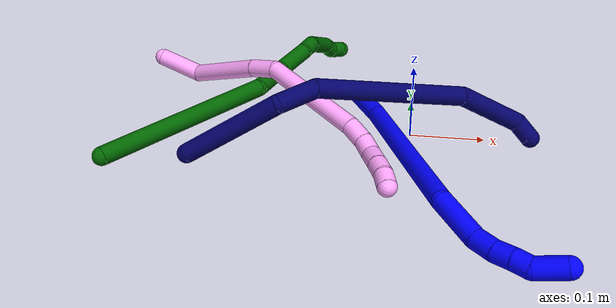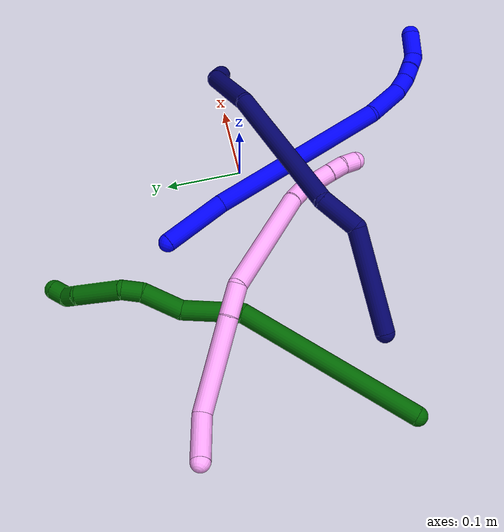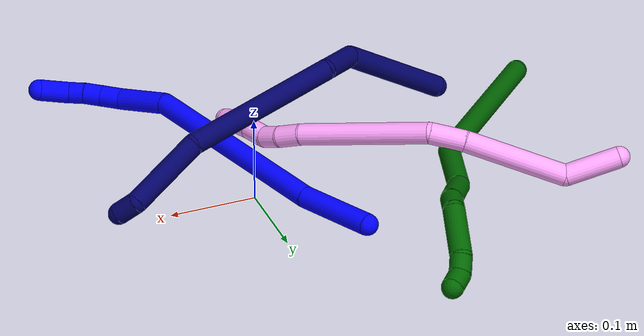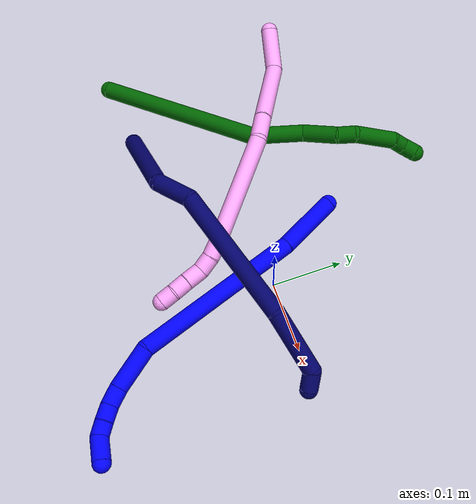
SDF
<sdf version="1.7">
 <world name="default">
  <model name="1">
   <static>0</static>
   <link name="1">
    <collision name="collision-cylinder-e_1_1_4">
     <pose>0.017603 -0.017178 0.037435 0.430205 0.403896 0.089404</pose>
     <geometry><cylinder><radius>0.0125</radius><length>0.089584</length></cylinder></geometry>
     <surface>
      <friction><ode><mu>1.16</mu><mu2>1.16</mu2><slip1>0</slip1><slip2>0</slip2></ode></friction>
      <contact><ode><kp>1e+06</kp><kd>1</kd><max_vel>0</max_vel><min_depth>0.001</min_depth></ode></contact>
     </surface>
    </collision>
    <visual name="visual-cylinder-e_1_1_4">
     <pose>0.017603 -0.017178 0.037435 0.430205 0.403896 0.089404</pose>
     <geometry><cylinder><radius>0.0125</radius><length>0.089584</length></cylinder></geometry>
     <material><ambient>0 0 1 1</ambient></material>
    </visual>
    <collision name="collision-cylinder-e_2_4_5">
     <pose>0.074973 -0.096499 0.172942 0.564796 0.329988 0.09655</pose>
     <geometry><cylinder><radius>0.0125</radius><length>0.245449</length></cylinder></geometry>
     <surface>
      <friction><ode><mu>1.16</mu><mu2>1.16</mu2><slip1>0</slip1><slip2>0</slip2></ode></friction>
      <contact><ode><kp>1e+06</kp><kd>1</kd><max_vel>0</max_vel><min_depth>0.001</min_depth></ode></contact>
     </surface>
    </collision>
    <visual name="visual-cylinder-e_2_4_5">
     <pose>0.074973 -0.096499 0.172942 0.564796 0.329988 0.09655</pose>
     <geometry><cylinder><radius>0.0125</radius><length>0.245449</length></cylinder></geometry>
     <material><ambient>0 0 1 1</ambient></material>
    </visual>
    <collision name="collision-cylinder-e_3_5_6">
     <pose>0.132431 -0.165372 0.295425 0.268982 0.609805 0.085116</pose>
     <geometry><cylinder><radius>0.0125</radius><length>0.06178</length></cylinder></geometry>
     <surface>
      <friction><ode><mu>1.16</mu><mu2>1.16</mu2><slip1>0</slip1><slip2>0</slip2></ode></friction>
      <contact><ode><kp>1e+06</kp><kd>1</kd><max_vel>0</max_vel><min_depth>0.001</min_depth></ode></contact>
     </surface>
    </collision>
    <visual name="visual-cylinder-e_3_5_6">
     <pose>0.132431 -0.165372 0.295425 0.268982 0.609805 0.085116</pose>
     <geometry><cylinder><radius>0.0125</radius><length>0.06178</length></cylinder></geometry>
     <material><ambient>0 0 1 1</ambient></material>
    </visual>
    <collision name="collision-cylinder-e_4_6_7">
     <pose>0.15564 -0.172902 0.331485 0.068675 0.441516 0.015418</pose>
     <geometry><cylinder><radius>0.0125</radius><length>0.025827</length></cylinder></geometry>
     <surface>
      <friction><ode><mu>1.16</mu><mu2>1.16</mu2><slip1>0</slip1><slip2>0</slip2></ode></friction>
      <contact><ode><kp>1e+06</kp><kd>1</kd><max_vel>0</max_vel><min_depth>0.001</min_depth></ode></contact>
     </surface>
    </collision>
    <visual name="visual-cylinder-e_4_6_7">
     <pose>0.15564 -0.172902 0.331485 0.068675 0.441516 0.015418</pose>
     <geometry><cylinder><radius>0.0125</radius><length>0.025827</length></cylinder></geometry>
     <material><ambient>0 0 1 1</ambient></material>
    </visual>
    <collision name="collision-cylinder-e_5_7_8">
     <pose>0.164638 -0.172757 0.35322 -0.093541 0.330804 -0.015626</pose>
     <geometry><cylinder><radius>0.0125</radius><length>0.021425</length></cylinder></geometry>
     <surface>
      <friction><ode><mu>1.16</mu><mu2>1.16</mu2><slip1>0</slip1><slip2>0</slip2></ode></friction>
      <contact><ode><kp>1e+06</kp><kd>1</kd><max_vel>0</max_vel><min_depth>0.001</min_depth></ode></contact>
     </surface>
    </collision>
    <visual name="visual-cylinder-e_5_7_8">
     <pose>0.164638 -0.172757 0.35322 -0.093541 0.330804 -0.015626</pose>
     <geometry><cylinder><radius>0.0125</radius><length>0.021425</length></cylinder></geometry>
     <material><ambient>0 0 1 1</ambient></material>
    </visual>
    <collision name="collision-cylinder-e_6_8_9">
     <pose>0.172284 -0.170591 0.372341 -0.134196 0.428783 -0.029261</pose>
     <geometry><cylinder><radius>0.0125</radius><length>0.020046</length></cylinder></geometry>
     <surface>
      <friction><ode><mu>1.16</mu><mu2>1.16</mu2><slip1>0</slip1><slip2>0</slip2></ode></friction>
      <contact><ode><kp>1e+06</kp><kd>1</kd><max_vel>0</max_vel><min_depth>0.001</min_depth></ode></contact>
     </surface>
    </collision>
    <visual name="visual-cylinder-e_6_8_9">
     <pose>0.172284 -0.170591 0.372341 -0.134196 0.428783 -0.029261</pose>
     <geometry><cylinder><radius>0.0125</radius><length>0.020046</length></cylinder></geometry>
     <material><ambient>0 0 1 1</ambient></material>
    </visual>
    <collision name="collision-cylinder-e_7_9_2">
     <pose>0.177261 -0.160811 0.397125 -0.497868 0.045145 -0.011478</pose>
     <geometry><cylinder><radius>0.0125</radius><length>0.035888</length></cylinder></geometry>
     <surface>
      <friction><ode><mu>1.16</mu><mu2>1.16</mu2><slip1>0</slip1><slip2>0</slip2></ode></friction>
      <contact><ode><kp>1e+06</kp><kd>1</kd><max_vel>0</max_vel><min_depth>0.001</min_depth></ode></contact>
     </surface>
    </collision>
    <visual name="visual-cylinder-e_7_9_2">
     <pose>0.177261 -0.160811 0.397125 -0.497868 0.045145 -0.011478</pose>
     <geometry><cylinder><radius>0.0125</radius><length>0.035888</length></cylinder></geometry>
     <material><ambient>0 0 1 1</ambient></material>
    </visual>
    <collision name="collision-sphere-2">
     <pose>0.178071 -0.15225 0.412875 0 -0 0</pose>
     <geometry><sphere><radius>0.0125</radius></sphere></geometry>
     <surface>
      <friction><ode><mu>1.16</mu><mu2>1.16</mu2><slip1>0</slip1><slip2>0</slip2></ode></friction>
      <contact><ode><kp>1e+06</kp><kd>1</kd><max_vel>0</max_vel><min_depth>0.001</min_depth></ode></contact>
     </surface>
    </collision>
    <visual name="visual-sphere-2">
     <pose>0.178071 -0.15225 0.412875 0 -0 0</pose>
     <geometry><sphere><radius>0.0125</radius></sphere></geometry>
     <material><ambient>0 0 1 1</ambient></material>
    </visual>
    <collision name="collision-sphere-9">
     <pose>0.176452 -0.169371 0.381375 0 -0 0</pose>
     <geometry><sphere><radius>0.0125</radius></sphere></geometry>
     <surface>
      <friction><ode><mu>1.16</mu><mu2>1.16</mu2><slip1>0</slip1><slip2>0</slip2></ode></friction>
      <contact><ode><kp>1e+06</kp><kd>1</kd><max_vel>0</max_vel><min_depth>0.001</min_depth></ode></contact>
     </surface>
    </collision>
    <visual name="visual-sphere-9">
     <pose>0.176452 -0.169371 0.381375 0 -0 0</pose>
     <geometry><sphere><radius>0.0125</radius></sphere></geometry>
     <material><ambient>0 0 1 1</ambient></material>
    </visual>
    <collision name="collision-sphere-4">
     <pose>0.035207 -0.034355 0.07487 0 -0 0</pose>
     <geometry><sphere><radius>0.0125</radius></sphere></geometry>
     <surface>
      <friction><ode><mu>1.16</mu><mu2>1.16</mu2><slip1>0</slip1><slip2>0</slip2></ode></friction>
      <contact><ode><kp>1e+06</kp><kd>1</kd><max_vel>0</max_vel><min_depth>0.001</min_depth></ode></contact>
     </surface>
    </collision>
    <visual name="visual-sphere-4">
     <pose>0.035207 -0.034355 0.07487 0 -0 0</pose>
     <geometry><sphere><radius>0.0125</radius></sphere></geometry>
     <material><ambient>0 0 1 1</ambient></material>
    </visual>
    <collision name="collision-sphere-1">
     <geometry><sphere><radius>0.0125</radius></sphere></geometry>
     <surface>
      <friction><ode><mu>1.16</mu><mu2>1.16</mu2><slip1>0</slip1><slip2>0</slip2></ode></friction>
      <contact><ode><kp>1e+06</kp><kd>1</kd><max_vel>0</max_vel><min_depth>0.001</min_depth></ode></contact>
     </surface>
    </collision>
    <visual name="visual-sphere-1">
     <geometry><sphere><radius>0.0125</radius></sphere></geometry>
     <material><ambient>0 0 1 1</ambient></material>
    </visual>
    <collision name="collision-sphere-8">
     <pose>0.168117 -0.171811 0.363308 0 -0 0</pose>
     <geometry><sphere><radius>0.0125</radius></sphere></geometry>
     <surface>
      <friction><ode><mu>1.16</mu><mu2>1.16</mu2><slip1>0</slip1><slip2>0</slip2></ode></friction>
      <contact><ode><kp>1e+06</kp><kd>1</kd><max_vel>0</max_vel><min_depth>0.001</min_depth></ode></contact>
     </surface>
    </collision>
    <visual name="visual-sphere-8">
     <pose>0.168117 -0.171811 0.363308 0 -0 0</pose>
     <geometry><sphere><radius>0.0125</radius></sphere></geometry>
     <material><ambient>0 0 1 1</ambient></material>
    </visual>
    <collision name="collision-sphere-5">
     <pose>0.11474 -0.158642 0.271014 0 -0 0</pose>
     <geometry><sphere><radius>0.0125</radius></sphere></geometry>
     <surface>
      <friction><ode><mu>1.16</mu><mu2>1.16</mu2><slip1>0</slip1><slip2>0</slip2></ode></friction>
      <contact><ode><kp>1e+06</kp><kd>1</kd><max_vel>0</max_vel><min_depth>0.001</min_depth></ode></contact>
     </surface>
    </collision>
    <visual name="visual-sphere-5">
     <pose>0.11474 -0.158642 0.271014 0 -0 0</pose>
     <geometry><sphere><radius>0.0125</radius></sphere></geometry>
     <material><ambient>0 0 1 1</ambient></material>
    </visual>
    <collision name="collision-sphere-6">
     <pose>0.150122 -0.172101 0.319837 0 -0 0</pose>
     <geometry><sphere><radius>0.0125</radius></sphere></geometry>
     <surface>
      <friction><ode><mu>1.16</mu><mu2>1.16</mu2><slip1>0</slip1><slip2>0</slip2></ode></friction>
      <contact><ode><kp>1e+06</kp><kd>1</kd><max_vel>0</max_vel><min_depth>0.001</min_depth></ode></contact>
     </surface>
    </collision>
    <visual name="visual-sphere-6">
     <pose>0.150122 -0.172101 0.319837 0 -0 0</pose>
     <geometry><sphere><radius>0.0125</radius></sphere></geometry>
     <material><ambient>0 0 1 1</ambient></material>
    </visual>
    <collision name="collision-sphere-7">
     <pose>0.161158 -0.173703 0.343132 0 -0 0</pose>
     <geometry><sphere><radius>0.0125</radius></sphere></geometry>
     <surface>
      <friction><ode><mu>1.16</mu><mu2>1.16</mu2><slip1>0</slip1><slip2>0</slip2></ode></friction>
      <contact><ode><kp>1e+06</kp><kd>1</kd><max_vel>0</max_vel><min_depth>0.001</min_depth></ode></contact>
     </surface>
    </collision>
    <visual name="visual-sphere-7">
     <pose>0.161158 -0.173703 0.343132 0 -0 0</pose>
     <geometry><sphere><radius>0.0125</radius></sphere></geometry>
     <material><ambient>0 0 1 1</ambient></material>
    </visual>
    <inertial>
     <pose>0.091046 -0.105598 0.203797 0 -0 0</pose>
     <mass>0.5</mass>
     <inertia>
      <ixx>0.00139</ixx>
      <ixy>0</ixy>
      <ixz>0</ixz>
      <iyy>0.001263</iyy>
      <iyz>0</iyz>
      <izz>0.000245</izz>
     </inertia>
    </inertial>
   </link>
   <pose>-0.08847 0.115918 0.011793 -0.30538 1.16746 -0.975531</pose>
  </model>
  <model name="4">
   <static>0</static>
   <link name="4">
    <collision name="collision-cylinder-e_1_1_4">
     <pose>-0.007444 0.000998 -0.031047 -3.10945 -0.235205 2.87119</pose>
     <geometry><cylinder><radius>0.0125</radius><length>0.063884</length></cylinder></geometry>
     <surface>
      <friction><ode><mu>1.16</mu><mu2>1.16</mu2><slip1>0</slip1><slip2>0</slip2></ode></friction>
      <contact><ode><kp>1e+06</kp><kd>1</kd><max_vel>0</max_vel><min_depth>0.001</min_depth></ode></contact>
     </surface>
    </collision>
    <visual name="visual-cylinder-e_1_1_4">
     <pose>-0.007444 0.000998 -0.031047 -3.10945 -0.235205 2.87119</pose>
     <geometry><cylinder><radius>0.0125</radius><length>0.063884</length></cylinder></geometry>
     <material><ambient>1 0.65098 0.996078 1</ambient></material>
    </visual>
    <collision name="collision-cylinder-e_2_4_5">
     <pose>-0.004634 0.033188 -0.1121 -2.58389 0.172257 -0.585794</pose>
     <geometry><cylinder><radius>0.0125</radius><length>0.119646</length></cylinder></geometry>
     <surface>
      <friction><ode><mu>1.16</mu><mu2>1.16</mu2><slip1>0</slip1><slip2>0</slip2></ode></friction>
      <contact><ode><kp>1e+06</kp><kd>1</kd><max_vel>0</max_vel><min_depth>0.001</min_depth></ode></contact>
     </surface>
    </collision>
    <visual name="visual-cylinder-e_2_4_5">
     <pose>-0.004634 0.033188 -0.1121 -2.58389 0.172257 -0.585794</pose>
     <geometry><cylinder><radius>0.0125</radius><length>0.119646</length></cylinder></geometry>
     <material><ambient>1 0.65098 0.996078 1</ambient></material>
    </visual>
    <collision name="collision-cylinder-e_3_5_6">
     <pose>0.008488 0.07293 -0.180318 -2.70263 0.141612 -0.615669</pose>
     <geometry><cylinder><radius>0.0125</radius><length>0.040643</length></cylinder></geometry>
     <surface>
      <friction><ode><mu>1.16</mu><mu2>1.16</mu2><slip1>0</slip1><slip2>0</slip2></ode></friction>
      <contact><ode><kp>1e+06</kp><kd>1</kd><max_vel>0</max_vel><min_depth>0.001</min_depth></ode></contact>
     </surface>
    </collision>
    <visual name="visual-cylinder-e_3_5_6">
     <pose>0.008488 0.07293 -0.180318 -2.70263 0.141612 -0.615669</pose>
     <geometry><cylinder><radius>0.0125</radius><length>0.040643</length></cylinder></geometry>
     <material><ambient>1 0.65098 0.996078 1</ambient></material>
    </visual>
    <collision name="collision-cylinder-e_4_6_7">
     <pose>0.029701 0.081415 -0.273951 3.14073 0.238591 3.13437</pose>
     <geometry><cylinder><radius>0.0125</radius><length>0.155241</length></cylinder></geometry>
     <surface>
      <friction><ode><mu>1.16</mu><mu2>1.16</mu2><slip1>0</slip1><slip2>0</slip2></ode></friction>
      <contact><ode><kp>1e+06</kp><kd>1</kd><max_vel>0</max_vel><min_depth>0.001</min_depth></ode></contact>
     </surface>
    </collision>
    <visual name="visual-cylinder-e_4_6_7">
     <pose>0.029701 0.081415 -0.273951 3.14073 0.238591 3.13437</pose>
     <geometry><cylinder><radius>0.0125</radius><length>0.155241</length></cylinder></geometry>
     <material><ambient>1 0.65098 0.996078 1</ambient></material>
    </visual>
    <collision name="collision-cylinder-e_5_7_8">
     <pose>0.051938 0.078909 -0.362791 2.96164 0.278026 1.99617</pose>
     <geometry><cylinder><radius>0.0125</radius><length>0.028367</length></cylinder></geometry>
     <surface>
      <friction><ode><mu>1.16</mu><mu2>1.16</mu2><slip1>0</slip1><slip2>0</slip2></ode></friction>
      <contact><ode><kp>1e+06</kp><kd>1</kd><max_vel>0</max_vel><min_depth>0.001</min_depth></ode></contact>
     </surface>
    </collision>
    <visual name="visual-cylinder-e_5_7_8">
     <pose>0.051938 0.078909 -0.362791 2.96164 0.278026 1.99617</pose>
     <geometry><cylinder><radius>0.0125</radius><length>0.028367</length></cylinder></geometry>
     <material><ambient>1 0.65098 0.996078 1</ambient></material>
    </visual>
    <collision name="collision-cylinder-e_6_8_9">
     <pose>0.061077 0.073676 -0.386274 2.87098 0.465499 2.09897</pose>
     <geometry><cylinder><radius>0.0125</radius><length>0.023376</length></cylinder></geometry>
     <surface>
      <friction><ode><mu>1.16</mu><mu2>1.16</mu2><slip1>0</slip1><slip2>0</slip2></ode></friction>
      <contact><ode><kp>1e+06</kp><kd>1</kd><max_vel>0</max_vel><min_depth>0.001</min_depth></ode></contact>
     </surface>
    </collision>
    <visual name="visual-cylinder-e_6_8_9">
     <pose>0.061077 0.073676 -0.386274 2.87098 0.465499 2.09897</pose>
     <geometry><cylinder><radius>0.0125</radius><length>0.023376</length></cylinder></geometry>
     <material><ambient>1 0.65098 0.996078 1</ambient></material>
    </visual>
    <collision name="collision-cylinder-e_7_9_10">
     <pose>0.07529 0.071174 -0.405593 -3.11026 0.769293 -3.06423</pose>
     <geometry><cylinder><radius>0.0125</radius><length>0.025778</length></cylinder></geometry>
     <surface>
      <friction><ode><mu>1.16</mu><mu2>1.16</mu2><slip1>0</slip1><slip2>0</slip2></ode></friction>
      <contact><ode><kp>1e+06</kp><kd>1</kd><max_vel>0</max_vel><min_depth>0.001</min_depth></ode></contact>
     </surface>
    </collision>
    <visual name="visual-cylinder-e_7_9_10">
     <pose>0.07529 0.071174 -0.405593 -3.11026 0.769293 -3.06423</pose>
     <geometry><cylinder><radius>0.0125</radius><length>0.025778</length></cylinder></geometry>
     <material><ambient>1 0.65098 0.996078 1</ambient></material>
    </visual>
    <collision name="collision-cylinder-e_8_10_11">
     <pose>0.091697 0.071079 -0.423105 3.09498 0.732957 3.02027</pose>
     <geometry><cylinder><radius>0.0125</radius><length>0.022245</length></cylinder></geometry>
     <surface>
      <friction><ode><mu>1.16</mu><mu2>1.16</mu2><slip1>0</slip1><slip2>0</slip2></ode></friction>
      <contact><ode><kp>1e+06</kp><kd>1</kd><max_vel>0</max_vel><min_depth>0.001</min_depth></ode></contact>
     </surface>
    </collision>
    <visual name="visual-cylinder-e_8_10_11">
     <pose>0.091697 0.071079 -0.423105 3.09498 0.732957 3.02027</pose>
     <geometry><cylinder><radius>0.0125</radius><length>0.022245</length></cylinder></geometry>
     <material><ambient>1 0.65098 0.996078 1</ambient></material>
    </visual>
    <collision name="collision-cylinder-e_9_11_2">
     <pose>0.106086 0.06811 -0.438672 2.80189 0.730662 2.2986</pose>
     <geometry><cylinder><radius>0.0125</radius><length>0.02082</length></cylinder></geometry>
     <surface>
      <friction><ode><mu>1.16</mu><mu2>1.16</mu2><slip1>0</slip1><slip2>0</slip2></ode></friction>
      <contact><ode><kp>1e+06</kp><kd>1</kd><max_vel>0</max_vel><min_depth>0.001</min_depth></ode></contact>
     </surface>
    </collision>
    <visual name="visual-cylinder-e_9_11_2">
     <pose>0.106086 0.06811 -0.438672 2.80189 0.730662 2.2986</pose>
     <geometry><cylinder><radius>0.0125</radius><length>0.02082</length></cylinder></geometry>
     <material><ambient>1 0.65098 0.996078 1</ambient></material>
    </visual>
    <collision name="collision-sphere-2">
     <pose>0.113033 0.065527 -0.445982 0 -0 0</pose>
     <geometry><sphere><radius>0.0125</radius></sphere></geometry>
     <surface>
      <friction><ode><mu>1.16</mu><mu2>1.16</mu2><slip1>0</slip1><slip2>0</slip2></ode></friction>
      <contact><ode><kp>1e+06</kp><kd>1</kd><max_vel>0</max_vel><min_depth>0.001</min_depth></ode></contact>
     </surface>
    </collision>
    <visual name="visual-sphere-2">
     <pose>0.113033 0.065527 -0.445982 0 -0 0</pose>
     <geometry><sphere><radius>0.0125</radius></sphere></geometry>
     <material><ambient>1 0.65098 0.996078 1</ambient></material>
    </visual>
    <collision name="collision-sphere-11">
     <pose>0.099139 0.070694 -0.431363 0 -0 0</pose>
     <geometry><sphere><radius>0.0125</radius></sphere></geometry>
     <surface>
      <friction><ode><mu>1.16</mu><mu2>1.16</mu2><slip1>0</slip1><slip2>0</slip2></ode></friction>
      <contact><ode><kp>1e+06</kp><kd>1</kd><max_vel>0</max_vel><min_depth>0.001</min_depth></ode></contact>
     </surface>
    </collision>
    <visual name="visual-sphere-11">
     <pose>0.099139 0.070694 -0.431363 0 -0 0</pose>
     <geometry><sphere><radius>0.0125</radius></sphere></geometry>
     <material><ambient>1 0.65098 0.996078 1</ambient></material>
    </visual>
    <collision name="collision-sphere-10">
     <pose>0.084256 0.071464 -0.414848 0 -0 0</pose>
     <geometry><sphere><radius>0.0125</radius></sphere></geometry>
     <surface>
      <friction><ode><mu>1.16</mu><mu2>1.16</mu2><slip1>0</slip1><slip2>0</slip2></ode></friction>
      <contact><ode><kp>1e+06</kp><kd>1</kd><max_vel>0</max_vel><min_depth>0.001</min_depth></ode></contact>
     </surface>
    </collision>
    <visual name="visual-sphere-10">
     <pose>0.084256 0.071464 -0.414848 0 -0 0</pose>
     <geometry><sphere><radius>0.0125</radius></sphere></geometry>
     <material><ambient>1 0.65098 0.996078 1</ambient></material>
    </visual>
    <collision name="collision-sphere-9">
     <pose>0.066324 0.070884 -0.396338 0 -0 0</pose>
     <geometry><sphere><radius>0.0125</radius></sphere></geometry>
     <surface>
      <friction><ode><mu>1.16</mu><mu2>1.16</mu2><slip1>0</slip1><slip2>0</slip2></ode></friction>
      <contact><ode><kp>1e+06</kp><kd>1</kd><max_vel>0</max_vel><min_depth>0.001</min_depth></ode></contact>
     </surface>
    </collision>
    <visual name="visual-sphere-9">
     <pose>0.066324 0.070884 -0.396338 0 -0 0</pose>
     <geometry><sphere><radius>0.0125</radius></sphere></geometry>
     <material><ambient>1 0.65098 0.996078 1</ambient></material>
    </visual>
    <collision name="collision-sphere-4">
     <pose>-0.014888 0.001996 -0.062093 0 -0 0</pose>
     <geometry><sphere><radius>0.0125</radius></sphere></geometry>
     <surface>
      <friction><ode><mu>1.16</mu><mu2>1.16</mu2><slip1>0</slip1><slip2>0</slip2></ode></friction>
      <contact><ode><kp>1e+06</kp><kd>1</kd><max_vel>0</max_vel><min_depth>0.001</min_depth></ode></contact>
     </surface>
    </collision>
    <visual name="visual-sphere-4">
     <pose>-0.014888 0.001996 -0.062093 0 -0 0</pose>
     <geometry><sphere><radius>0.0125</radius></sphere></geometry>
     <material><ambient>1 0.65098 0.996078 1</ambient></material>
    </visual>
    <collision name="collision-sphere-1">
     <geometry><sphere><radius>0.0125</radius></sphere></geometry>
     <surface>
      <friction><ode><mu>1.16</mu><mu2>1.16</mu2><slip1>0</slip1><slip2>0</slip2></ode></friction>
      <contact><ode><kp>1e+06</kp><kd>1</kd><max_vel>0</max_vel><min_depth>0.001</min_depth></ode></contact>
     </surface>
    </collision>
    <visual name="visual-sphere-1">
     <geometry><sphere><radius>0.0125</radius></sphere></geometry>
     <material><ambient>1 0.65098 0.996078 1</ambient></material>
    </visual>
    <collision name="collision-sphere-8">
     <pose>0.055831 0.076468 -0.37621 0 -0 0</pose>
     <geometry><sphere><radius>0.0125</radius></sphere></geometry>
     <surface>
      <friction><ode><mu>1.16</mu><mu2>1.16</mu2><slip1>0</slip1><slip2>0</slip2></ode></friction>
      <contact><ode><kp>1e+06</kp><kd>1</kd><max_vel>0</max_vel><min_depth>0.001</min_depth></ode></contact>
     </surface>
    </collision>
    <visual name="visual-sphere-8">
     <pose>0.055831 0.076468 -0.37621 0 -0 0</pose>
     <geometry><sphere><radius>0.0125</radius></sphere></geometry>
     <material><ambient>1 0.65098 0.996078 1</ambient></material>
    </visual>
    <collision name="collision-sphere-5">
     <pose>0.00562 0.06438 -0.162108 0 -0 0</pose>
     <geometry><sphere><radius>0.0125</radius></sphere></geometry>
     <surface>
      <friction><ode><mu>1.16</mu><mu2>1.16</mu2><slip1>0</slip1><slip2>0</slip2></ode></friction>
      <contact><ode><kp>1e+06</kp><kd>1</kd><max_vel>0</max_vel><min_depth>0.001</min_depth></ode></contact>
     </surface>
    </collision>
    <visual name="visual-sphere-5">
     <pose>0.00562 0.06438 -0.162108 0 -0 0</pose>
     <geometry><sphere><radius>0.0125</radius></sphere></geometry>
     <material><ambient>1 0.65098 0.996078 1</ambient></material>
    </visual>
    <collision name="collision-sphere-6">
     <pose>0.011357 0.08148 -0.198529 0 -0 0</pose>
     <geometry><sphere><radius>0.0125</radius></sphere></geometry>
     <surface>
      <friction><ode><mu>1.16</mu><mu2>1.16</mu2><slip1>0</slip1><slip2>0</slip2></ode></friction>
      <contact><ode><kp>1e+06</kp><kd>1</kd><max_vel>0</max_vel><min_depth>0.001</min_depth></ode></contact>
     </surface>
    </collision>
    <visual name="visual-sphere-6">
     <pose>0.011357 0.08148 -0.198529 0 -0 0</pose>
     <geometry><sphere><radius>0.0125</radius></sphere></geometry>
     <material><ambient>1 0.65098 0.996078 1</ambient></material>
    </visual>
    <collision name="collision-sphere-7">
     <pose>0.048045 0.08135 -0.349373 0 -0 0</pose>
     <geometry><sphere><radius>0.0125</radius></sphere></geometry>
     <surface>
      <friction><ode><mu>1.16</mu><mu2>1.16</mu2><slip1>0</slip1><slip2>0</slip2></ode></friction>
      <contact><ode><kp>1e+06</kp><kd>1</kd><max_vel>0</max_vel><min_depth>0.001</min_depth></ode></contact>
     </surface>
    </collision>
    <visual name="visual-sphere-7">
     <pose>0.048045 0.08135 -0.349373 0 -0 0</pose>
     <geometry><sphere><radius>0.0125</radius></sphere></geometry>
     <material><ambient>1 0.65098 0.996078 1</ambient></material>
    </visual>
    <inertial>
     <pose>0.026032 0.056864 -0.227148 0 -0 0</pose>
     <mass>0.5</mass>
     <inertia>
      <ixx>-0.000273</ixx>
      <ixy>0</ixy>
      <ixz>0</ixz>
      <iyy>0.000182</iyy>
      <iyz>0</iyz>
      <izz>-0.000215</izz>
     </inertia>
    </inertial>
   </link>
   <pose>-0.387559 0.133966 0.040724 1.29678 -0.254619 -1.9713</pose>
  </model>
  <model name="6">
   <static>0</static>
   <link name="6">
    <collision name="collision-cylinder-e_1_1_4">
     <pose>0.037952 0.095729 -0.064788 -2.16577 0.317242 -0.585515</pose>
     <geometry><cylinder><radius>0.0125</radius><length>0.243325</length></cylinder></geometry>
     <surface>
      <friction><ode><mu>1.16</mu><mu2>1.16</mu2><slip1>0</slip1><slip2>0</slip2></ode></friction>
      <contact><ode><kp>1e+06</kp><kd>1</kd><max_vel>0</max_vel><min_depth>0.001</min_depth></ode></contact>
     </surface>
    </collision>
    <visual name="visual-cylinder-e_1_1_4">
     <pose>0.037952 0.095729 -0.064788 -2.16577 0.317242 -0.585515</pose>
     <geometry><cylinder><radius>0.0125</radius><length>0.243325</length></cylinder></geometry>
     <material><ambient>0 0.392157 0.003922 1</ambient></material>
    </visual>
    <collision name="collision-cylinder-e_2_4_5">
     <pose>0.097169 0.20697 -0.156238 -2.61463 0.603532 -1.71348</pose>
     <geometry><cylinder><radius>0.0125</radius><length>0.074933</length></cylinder></geometry>
     <surface>
      <friction><ode><mu>1.16</mu><mu2>1.16</mu2><slip1>0</slip1><slip2>0</slip2></ode></friction>
      <contact><ode><kp>1e+06</kp><kd>1</kd><max_vel>0</max_vel><min_depth>0.001</min_depth></ode></contact>
     </surface>
    </collision>
    <visual name="visual-cylinder-e_2_4_5">
     <pose>0.097169 0.20697 -0.156238 -2.61463 0.603532 -1.71348</pose>
     <geometry><cylinder><radius>0.0125</radius><length>0.074933</length></cylinder></geometry>
     <material><ambient>0 0.392157 0.003922 1</ambient></material>
    </visual>
    <collision name="collision-cylinder-e_3_5_6">
     <pose>0.125026 0.239602 -0.201614 -2.40066 0.254323 -0.636007</pose>
     <geometry><cylinder><radius>0.0125</radius><length>0.052409</length></cylinder></geometry>
     <surface>
      <friction><ode><mu>1.16</mu><mu2>1.16</mu2><slip1>0</slip1><slip2>0</slip2></ode></friction>
      <contact><ode><kp>1e+06</kp><kd>1</kd><max_vel>0</max_vel><min_depth>0.001</min_depth></ode></contact>
     </surface>
    </collision>
    <visual name="visual-cylinder-e_3_5_6">
     <pose>0.125026 0.239602 -0.201614 -2.40066 0.254323 -0.636007</pose>
     <geometry><cylinder><radius>0.0125</radius><length>0.052409</length></cylinder></geometry>
     <material><ambient>0 0.392157 0.003922 1</ambient></material>
    </visual>
    <collision name="collision-cylinder-e_4_6_7">
     <pose>0.137865 0.262574 -0.229901 -2.59285 0.507952 -1.48994</pose>
     <geometry><cylinder><radius>0.0125</radius><length>0.025687</length></cylinder></geometry>
     <surface>
      <friction><ode><mu>1.16</mu><mu2>1.16</mu2><slip1>0</slip1><slip2>0</slip2></ode></friction>
      <contact><ode><kp>1e+06</kp><kd>1</kd><max_vel>0</max_vel><min_depth>0.001</min_depth></ode></contact>
     </surface>
    </collision>
    <visual name="visual-cylinder-e_4_6_7">
     <pose>0.137865 0.262574 -0.229901 -2.59285 0.507952 -1.48994</pose>
     <geometry><cylinder><radius>0.0125</radius><length>0.025687</length></cylinder></geometry>
     <material><ambient>0 0.392157 0.003922 1</ambient></material>
    </visual>
    <collision name="collision-cylinder-e_5_7_8">
     <pose>0.169345 0.28 -0.252885 -2.42959 0.95875 -1.8997</pose>
     <geometry><cylinder><radius>0.0125</radius><length>0.061659</length></cylinder></geometry>
     <surface>
      <friction><ode><mu>1.16</mu><mu2>1.16</mu2><slip1>0</slip1><slip2>0</slip2></ode></friction>
      <contact><ode><kp>1e+06</kp><kd>1</kd><max_vel>0</max_vel><min_depth>0.001</min_depth></ode></contact>
     </surface>
    </collision>
    <visual name="visual-cylinder-e_5_7_8">
     <pose>0.169345 0.28 -0.252885 -2.42959 0.95875 -1.8997</pose>
     <geometry><cylinder><radius>0.0125</radius><length>0.061659</length></cylinder></geometry>
     <material><ambient>0 0.392157 0.003922 1</ambient></material>
    </visual>
    <collision name="collision-cylinder-e_6_8_9">
     <pose>0.20371 0.296034 -0.267328 -1.79842 1.10601 -1.32058</pose>
     <geometry><cylinder><radius>0.0125</radius><length>0.020432</length></cylinder></geometry>
     <surface>
      <friction><ode><mu>1.16</mu><mu2>1.16</mu2><slip1>0</slip1><slip2>0</slip2></ode></friction>
      <contact><ode><kp>1e+06</kp><kd>1</kd><max_vel>0</max_vel><min_depth>0.001</min_depth></ode></contact>
     </surface>
    </collision>
    <visual name="visual-cylinder-e_6_8_9">
     <pose>0.20371 0.296034 -0.267328 -1.79842 1.10601 -1.32058</pose>
     <geometry><cylinder><radius>0.0125</radius><length>0.020432</length></cylinder></geometry>
     <material><ambient>0 0.392157 0.003922 1</ambient></material>
    </visual>
    <collision name="collision-cylinder-e_7_9_2">
     <pose>0.218421 0.30909 -0.271704 -1.94174 0.544004 -0.774343</pose>
     <geometry><cylinder><radius>0.0125</radius><length>0.021556</length></cylinder></geometry>
     <surface>
      <friction><ode><mu>1.16</mu><mu2>1.16</mu2><slip1>0</slip1><slip2>0</slip2></ode></friction>
      <contact><ode><kp>1e+06</kp><kd>1</kd><max_vel>0</max_vel><min_depth>0.001</min_depth></ode></contact>
     </surface>
    </collision>
    <visual name="visual-cylinder-e_7_9_2">
     <pose>0.218421 0.30909 -0.271704 -1.94174 0.544004 -0.774343</pose>
     <geometry><cylinder><radius>0.0125</radius><length>0.021556</length></cylinder></geometry>
     <material><ambient>0 0.392157 0.003922 1</ambient></material>
    </visual>
    <collision name="collision-sphere-2">
     <pose>0.223999 0.317685 -0.275047 0 -0 0</pose>
     <geometry><sphere><radius>0.0125</radius></sphere></geometry>
     <surface>
      <friction><ode><mu>1.16</mu><mu2>1.16</mu2><slip1>0</slip1><slip2>0</slip2></ode></friction>
      <contact><ode><kp>1e+06</kp><kd>1</kd><max_vel>0</max_vel><min_depth>0.001</min_depth></ode></contact>
     </surface>
    </collision>
    <visual name="visual-sphere-2">
     <pose>0.223999 0.317685 -0.275047 0 -0 0</pose>
     <geometry><sphere><radius>0.0125</radius></sphere></geometry>
     <material><ambient>0 0.392157 0.003922 1</ambient></material>
    </visual>
    <collision name="collision-sphere-9">
     <pose>0.212842 0.300495 -0.268361 0 -0 0</pose>
     <geometry><sphere><radius>0.0125</radius></sphere></geometry>
     <surface>
      <friction><ode><mu>1.16</mu><mu2>1.16</mu2><slip1>0</slip1><slip2>0</slip2></ode></friction>
      <contact><ode><kp>1e+06</kp><kd>1</kd><max_vel>0</max_vel><min_depth>0.001</min_depth></ode></contact>
     </surface>
    </collision>
    <visual name="visual-sphere-9">
     <pose>0.212842 0.300495 -0.268361 0 -0 0</pose>
     <geometry><sphere><radius>0.0125</radius></sphere></geometry>
     <material><ambient>0 0.392157 0.003922 1</ambient></material>
    </visual>
    <collision name="collision-sphere-4">
     <pose>0.075905 0.191457 -0.129576 0 -0 0</pose>
     <geometry><sphere><radius>0.0125</radius></sphere></geometry>
     <surface>
      <friction><ode><mu>1.16</mu><mu2>1.16</mu2><slip1>0</slip1><slip2>0</slip2></ode></friction>
      <contact><ode><kp>1e+06</kp><kd>1</kd><max_vel>0</max_vel><min_depth>0.001</min_depth></ode></contact>
     </surface>
    </collision>
    <visual name="visual-sphere-4">
     <pose>0.075905 0.191457 -0.129576 0 -0 0</pose>
     <geometry><sphere><radius>0.0125</radius></sphere></geometry>
     <material><ambient>0 0.392157 0.003922 1</ambient></material>
    </visual>
    <collision name="collision-sphere-1">
     <geometry><sphere><radius>0.0125</radius></sphere></geometry>
     <surface>
      <friction><ode><mu>1.16</mu><mu2>1.16</mu2><slip1>0</slip1><slip2>0</slip2></ode></friction>
      <contact><ode><kp>1e+06</kp><kd>1</kd><max_vel>0</max_vel><min_depth>0.001</min_depth></ode></contact>
     </surface>
    </collision>
    <visual name="visual-sphere-1">
     <geometry><sphere><radius>0.0125</radius></sphere></geometry>
     <material><ambient>0 0.392157 0.003922 1</ambient></material>
    </visual>
    <collision name="collision-sphere-8">
     <pose>0.194578 0.291573 -0.266294 0 -0 0</pose>
     <geometry><sphere><radius>0.0125</radius></sphere></geometry>
     <surface>
      <friction><ode><mu>1.16</mu><mu2>1.16</mu2><slip1>0</slip1><slip2>0</slip2></ode></friction>
      <contact><ode><kp>1e+06</kp><kd>1</kd><max_vel>0</max_vel><min_depth>0.001</min_depth></ode></contact>
     </surface>
    </collision>
    <visual name="visual-sphere-8">
     <pose>0.194578 0.291573 -0.266294 0 -0 0</pose>
     <geometry><sphere><radius>0.0125</radius></sphere></geometry>
     <material><ambient>0 0.392157 0.003922 1</ambient></material>
    </visual>
    <collision name="collision-sphere-5">
     <pose>0.118433 0.222484 -0.182901 0 -0 0</pose>
     <geometry><sphere><radius>0.0125</radius></sphere></geometry>
     <surface>
      <friction><ode><mu>1.16</mu><mu2>1.16</mu2><slip1>0</slip1><slip2>0</slip2></ode></friction>
      <contact><ode><kp>1e+06</kp><kd>1</kd><max_vel>0</max_vel><min_depth>0.001</min_depth></ode></contact>
     </surface>
    </collision>
    <visual name="visual-sphere-5">
     <pose>0.118433 0.222484 -0.182901 0 -0 0</pose>
     <geometry><sphere><radius>0.0125</radius></sphere></geometry>
     <material><ambient>0 0.392157 0.003922 1</ambient></material>
    </visual>
    <collision name="collision-sphere-6">
     <pose>0.131618 0.256721 -0.220327 0 -0 0</pose>
     <geometry><sphere><radius>0.0125</radius></sphere></geometry>
     <surface>
      <friction><ode><mu>1.16</mu><mu2>1.16</mu2><slip1>0</slip1><slip2>0</slip2></ode></friction>
      <contact><ode><kp>1e+06</kp><kd>1</kd><max_vel>0</max_vel><min_depth>0.001</min_depth></ode></contact>
     </surface>
    </collision>
    <visual name="visual-sphere-6">
     <pose>0.131618 0.256721 -0.220327 0 -0 0</pose>
     <geometry><sphere><radius>0.0125</radius></sphere></geometry>
     <material><ambient>0 0.392157 0.003922 1</ambient></material>
    </visual>
    <collision name="collision-sphere-7">
     <pose>0.144112 0.268427 -0.239475 0 -0 0</pose>
     <geometry><sphere><radius>0.0125</radius></sphere></geometry>
     <surface>
      <friction><ode><mu>1.16</mu><mu2>1.16</mu2><slip1>0</slip1><slip2>0</slip2></ode></friction>
      <contact><ode><kp>1e+06</kp><kd>1</kd><max_vel>0</max_vel><min_depth>0.001</min_depth></ode></contact>
     </surface>
    </collision>
    <visual name="visual-sphere-7">
     <pose>0.144112 0.268427 -0.239475 0 -0 0</pose>
     <geometry><sphere><radius>0.0125</radius></sphere></geometry>
     <material><ambient>0 0.392157 0.003922 1</ambient></material>
    </visual>
    <inertial>
     <pose>0.091843 0.176159 -0.14171 0 -0 0</pose>
     <mass>0.5</mass>
     <inertia>
      <ixx>0.000289</ixx>
      <ixy>0</ixy>
      <ixz>0</ixz>
      <iyy>-0.001031</iyy>
      <iyz>0</iyz>
      <izz>-0.001434</izz>
     </inertia>
    </inertial>
   </link>
   <pose>-0.384089 -0.129651 0.014166 3.10246 0.909878 1.69037</pose>
  </model>
  <model name="7">
   <static>0</static>
   <link name="7">
    <collision name="collision-cylinder-e_1_1_4">
     <pose>0.041753 0.044441 -0.029219 -2.15241 0.665554 -1.13988</pose>
     <geometry><cylinder><radius>0.0125</radius><length>0.135234</length></cylinder></geometry>
     <surface>
      <friction><ode><mu>1.16</mu><mu2>1.16</mu2><slip1>0</slip1><slip2>0</slip2></ode></friction>
      <contact><ode><kp>1e+06</kp><kd>1</kd><max_vel>0</max_vel><min_depth>0.001</min_depth></ode></contact>
     </surface>
    </collision>
    <visual name="visual-cylinder-e_1_1_4">
     <pose>0.041753 0.044441 -0.029219 -2.15241 0.665554 -1.13988</pose>
     <geometry><cylinder><radius>0.0125</radius><length>0.135234</length></cylinder></geometry>
     <material><ambient>0.003922 0 0.403922 1</ambient></material>
    </visual>
    <collision name="collision-cylinder-e_2_4_5">
     <pose>0.101498 0.091613 -0.078508 -3.00637 0.726279 -2.7889</pose>
     <geometry><cylinder><radius>0.0125</radius><length>0.054183</length></cylinder></geometry>
     <surface>
      <friction><ode><mu>1.16</mu><mu2>1.16</mu2><slip1>0</slip1><slip2>0</slip2></ode></friction>
      <contact><ode><kp>1e+06</kp><kd>1</kd><max_vel>0</max_vel><min_depth>0.001</min_depth></ode></contact>
     </surface>
    </collision>
    <visual name="visual-cylinder-e_2_4_5">
     <pose>0.101498 0.091613 -0.078508 -3.00637 0.726279 -2.7889</pose>
     <geometry><cylinder><radius>0.0125</radius><length>0.054183</length></cylinder></geometry>
     <material><ambient>0.003922 0 0.403922 1</ambient></material>
    </visual>
    <collision name="collision-cylinder-e_3_5_6">
     <pose>0.20871 0.097666 -0.134573 -3.04954 1.18585 -3.0051</pose>
     <geometry><cylinder><radius>0.0125</radius><length>0.192531</length></cylinder></geometry>
     <surface>
      <friction><ode><mu>1.16</mu><mu2>1.16</mu2><slip1>0</slip1><slip2>0</slip2></ode></friction>
      <contact><ode><kp>1e+06</kp><kd>1</kd><max_vel>0</max_vel><min_depth>0.001</min_depth></ode></contact>
     </surface>
    </collision>
    <visual name="visual-cylinder-e_3_5_6">
     <pose>0.20871 0.097666 -0.134573 -3.04954 1.18585 -3.0051</pose>
     <geometry><cylinder><radius>0.0125</radius><length>0.192531</length></cylinder></geometry>
     <material><ambient>0.003922 0 0.403922 1</ambient></material>
    </visual>
    <collision name="collision-cylinder-e_4_6_7">
     <pose>0.341066 0.088367 -0.17844 2.12841 1.23873 1.81886</pose>
     <geometry><cylinder><radius>0.0125</radius><length>0.091256</length></cylinder></geometry>
     <surface>
      <friction><ode><mu>1.16</mu><mu2>1.16</mu2><slip1>0</slip1><slip2>0</slip2></ode></friction>
      <contact><ode><kp>1e+06</kp><kd>1</kd><max_vel>0</max_vel><min_depth>0.001</min_depth></ode></contact>
     </surface>
    </collision>
    <visual name="visual-cylinder-e_4_6_7">
     <pose>0.341066 0.088367 -0.17844 2.12841 1.23873 1.81886</pose>
     <geometry><cylinder><radius>0.0125</radius><length>0.091256</length></cylinder></geometry>
     <material><ambient>0.003922 0 0.403922 1</ambient></material>
    </visual>
    <collision name="collision-cylinder-e_5_7_2">
     <pose>0.395599 0.073602 -0.179602 0.309367 1.01725 0.173443</pose>
     <geometry><cylinder><radius>0.0125</radius><length>0.026795</length></cylinder></geometry>
     <surface>
      <friction><ode><mu>1.16</mu><mu2>1.16</mu2><slip1>0</slip1><slip2>0</slip2></ode></friction>
      <contact><ode><kp>1e+06</kp><kd>1</kd><max_vel>0</max_vel><min_depth>0.001</min_depth></ode></contact>
     </surface>
    </collision>
    <visual name="visual-cylinder-e_5_7_2">
     <pose>0.395599 0.073602 -0.179602 0.309367 1.01725 0.173443</pose>
     <geometry><cylinder><radius>0.0125</radius><length>0.026795</length></cylinder></geometry>
     <material><ambient>0.003922 0 0.403922 1</ambient></material>
    </visual>
    <collision name="collision-sphere-2">
     <pose>0.406996 0.071457 -0.172893 0 -0 0</pose>
     <geometry><sphere><radius>0.0125</radius></sphere></geometry>
     <surface>
      <friction><ode><mu>1.16</mu><mu2>1.16</mu2><slip1>0</slip1><slip2>0</slip2></ode></friction>
      <contact><ode><kp>1e+06</kp><kd>1</kd><max_vel>0</max_vel><min_depth>0.001</min_depth></ode></contact>
     </surface>
    </collision>
    <visual name="visual-sphere-2">
     <pose>0.406996 0.071457 -0.172893 0 -0 0</pose>
     <geometry><sphere><radius>0.0125</radius></sphere></geometry>
     <material><ambient>0.003922 0 0.403922 1</ambient></material>
    </visual>
    <collision name="collision-sphere-7">
     <pose>0.384202 0.075746 -0.186311 0 -0 0</pose>
     <geometry><sphere><radius>0.0125</radius></sphere></geometry>
     <surface>
      <friction><ode><mu>1.16</mu><mu2>1.16</mu2><slip1>0</slip1><slip2>0</slip2></ode></friction>
      <contact><ode><kp>1e+06</kp><kd>1</kd><max_vel>0</max_vel><min_depth>0.001</min_depth></ode></contact>
     </surface>
    </collision>
    <visual name="visual-sphere-7">
     <pose>0.384202 0.075746 -0.186311 0 -0 0</pose>
     <geometry><sphere><radius>0.0125</radius></sphere></geometry>
     <material><ambient>0.003922 0 0.403922 1</ambient></material>
    </visual>
    <collision name="collision-sphere-6">
     <pose>0.297931 0.100989 -0.170569 0 -0 0</pose>
     <geometry><sphere><radius>0.0125</radius></sphere></geometry>
     <surface>
      <friction><ode><mu>1.16</mu><mu2>1.16</mu2><slip1>0</slip1><slip2>0</slip2></ode></friction>
      <contact><ode><kp>1e+06</kp><kd>1</kd><max_vel>0</max_vel><min_depth>0.001</min_depth></ode></contact>
     </surface>
    </collision>
    <visual name="visual-sphere-6">
     <pose>0.297931 0.100989 -0.170569 0 -0 0</pose>
     <geometry><sphere><radius>0.0125</radius></sphere></geometry>
     <material><ambient>0.003922 0 0.403922 1</ambient></material>
    </visual>
    <collision name="collision-sphere-5">
     <pose>0.119489 0.094343 -0.098578 0 -0 0</pose>
     <geometry><sphere><radius>0.0125</radius></sphere></geometry>
     <surface>
      <friction><ode><mu>1.16</mu><mu2>1.16</mu2><slip1>0</slip1><slip2>0</slip2></ode></friction>
      <contact><ode><kp>1e+06</kp><kd>1</kd><max_vel>0</max_vel><min_depth>0.001</min_depth></ode></contact>
     </surface>
    </collision>
    <visual name="visual-sphere-5">
     <pose>0.119489 0.094343 -0.098578 0 -0 0</pose>
     <geometry><sphere><radius>0.0125</radius></sphere></geometry>
     <material><ambient>0.003922 0 0.403922 1</ambient></material>
    </visual>
    <collision name="collision-sphere-1">
     <geometry><sphere><radius>0.0125</radius></sphere></geometry>
     <surface>
      <friction><ode><mu>1.16</mu><mu2>1.16</mu2><slip1>0</slip1><slip2>0</slip2></ode></friction>
      <contact><ode><kp>1e+06</kp><kd>1</kd><max_vel>0</max_vel><min_depth>0.001</min_depth></ode></contact>
     </surface>
    </collision>
    <visual name="visual-sphere-1">
     <geometry><sphere><radius>0.0125</radius></sphere></geometry>
     <material><ambient>0.003922 0 0.403922 1</ambient></material>
    </visual>
    <collision name="collision-sphere-4">
     <pose>0.083506 0.088882 -0.058438 0 -0 0</pose>
     <geometry><sphere><radius>0.0125</radius></sphere></geometry>
     <surface>
      <friction><ode><mu>1.16</mu><mu2>1.16</mu2><slip1>0</slip1><slip2>0</slip2></ode></friction>
      <contact><ode><kp>1e+06</kp><kd>1</kd><max_vel>0</max_vel><min_depth>0.001</min_depth></ode></contact>
     </surface>
    </collision>
    <visual name="visual-sphere-4">
     <pose>0.083506 0.088882 -0.058438 0 -0 0</pose>
     <geometry><sphere><radius>0.0125</radius></sphere></geometry>
     <material><ambient>0.003922 0 0.403922 1</ambient></material>
    </visual>
    <inertial>
     <pose>0.186107 0.079628 -0.110422 0 -0 0</pose>
     <mass>0.5</mass>
     <inertia>
      <ixx>-0.000302</ixx>
      <ixy>0</ixy>
      <ixz>0</ixz>
      <iyy>0.000571</iyy>
      <iyz>0</iyz>
      <izz>-0.00092</izz>
     </inertia>
    </inertial>
   </link>
   <pose>-0.275852 -0.120548 0.021007 2.02223 0.352057 -0.029144</pose>
  </model>
 </world>
</sdf>
